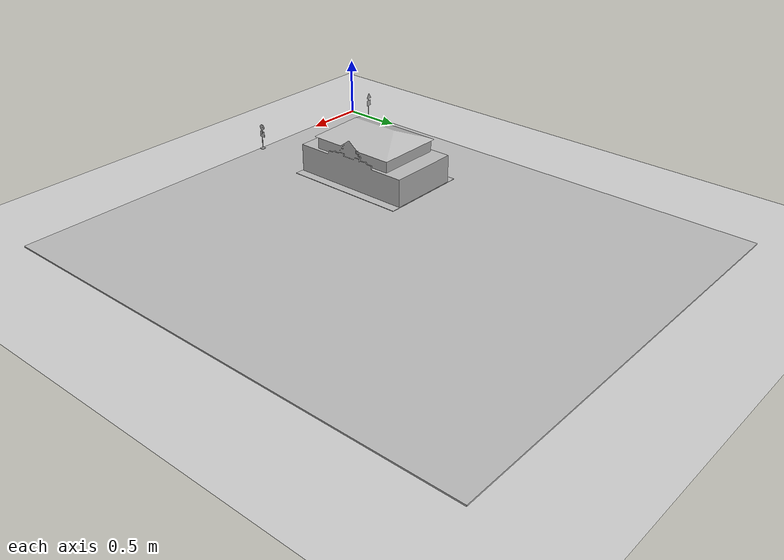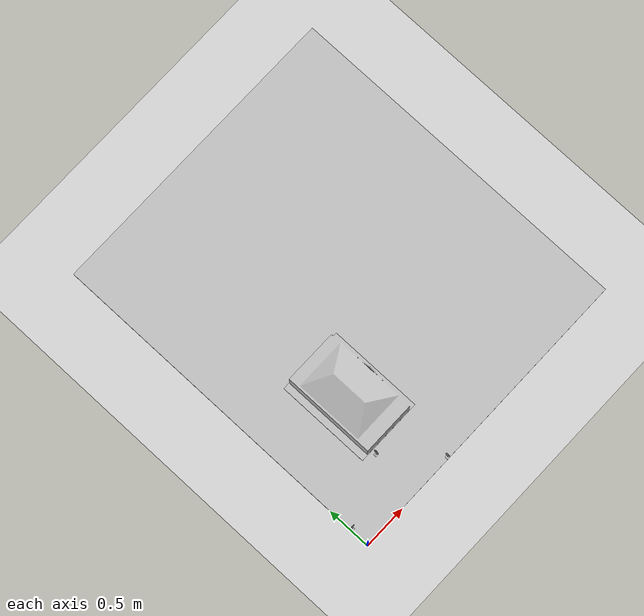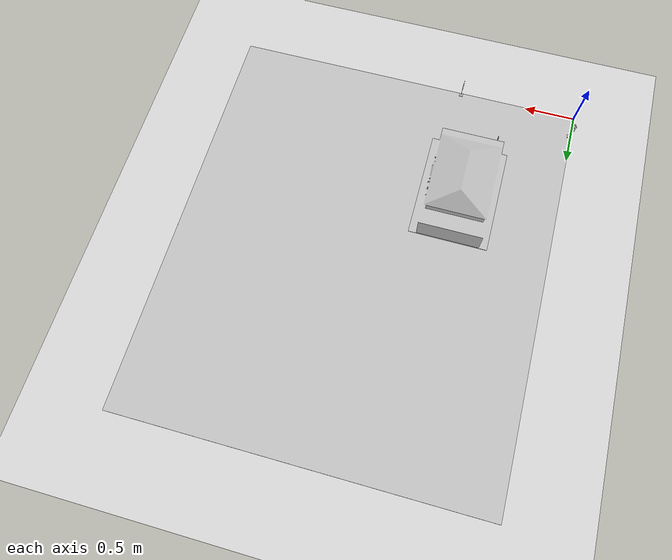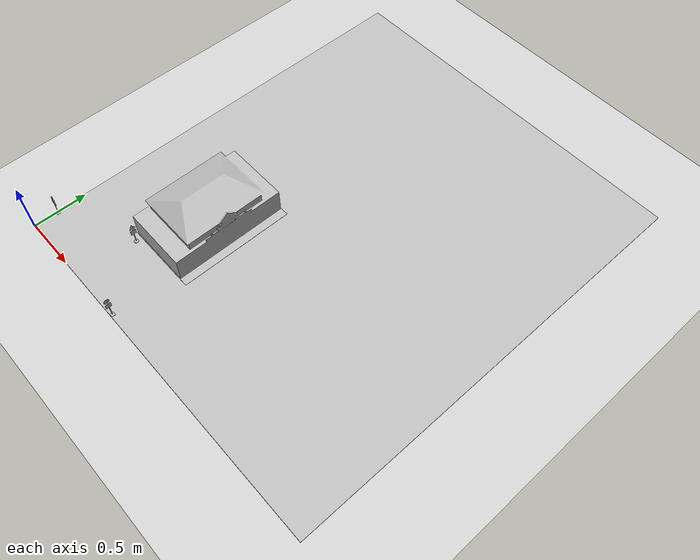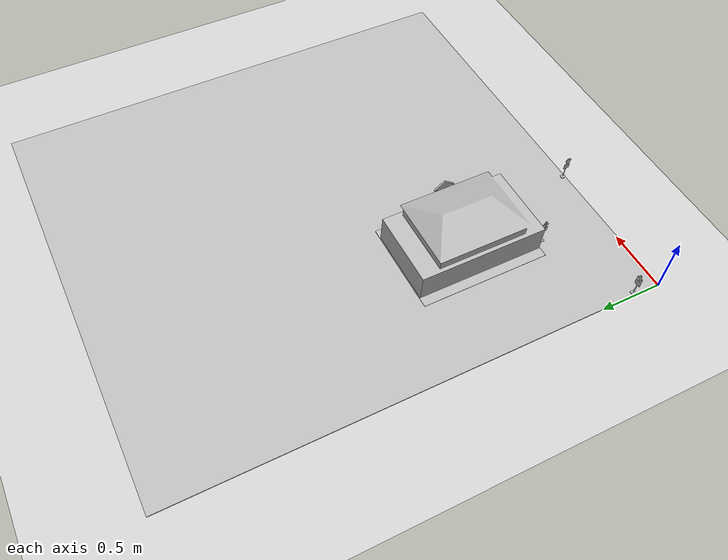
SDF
<sdf version="1.6">
 <world name="default">
  <model name="ground_plane">
   <static>1</static>
   <link name="link">
    <collision name="collision">
     <geometry><plane><normal>0 0 1</normal><size>100 100</size></plane></geometry>
     <surface><friction><ode><mu>100</mu><mu2>50</mu2></ode></friction></surface>
    </collision>
    <visual name="visual">
     <cast_shadows>0</cast_shadows>
     <geometry><plane><normal>0 0 1</normal><size>100 100</size></plane></geometry>
     <material>
      <script><uri>file://media/materials/scripts/gazebo.material</uri><name>Gazebo/Grey</name></script>
     </material>
    </visual>
   </link>
  </model>
  <model name="bigcity">
   <pose>0 0 0.002788 0 -0 0</pose>
   <link name="link_0">
    <inertial>
     <mass>1</mass>
     <inertia>
      <ixx>0.166667</ixx>
      <ixy>0</ixy>
      <ixz>0</ixz>
      <iyy>0.166667</iyy>
      <iyz>0</iyz>
      <izz>0.166667</izz>
     </inertia>
    </inertial>
    <visual name="visual">
     <geometry><mesh><uri>file://models/stl/daeBlender/bigcity.dae</uri><scale>1 1 1</scale></mesh></geometry>
     <material><shader type="pixel"><normal_map>__default__</normal_map></shader></material>
    </visual>
    <collision name="collision">
     <pose>1.75 2 -0.03 0 -0 0</pose>
     <geometry><box><size>3.6 4.1 0.08</size></box></geometry>
     <surface>
      <friction>
       <ode><mu>1</mu><mu2>1</mu2><fdir1>0 0 0</fdir1><slip1>0</slip1><slip2>0</slip2></ode>
       <torsional>
        <coefficient>1</coefficient>
        <patch_radius>0</patch_radius>
        <surface_radius>0</surface_radius>
        <use_patch_radius>1</use_patch_radius>
        <ode><slip>0</slip></ode>
       </torsional>
      </friction>
      <bounce><restitution_coefficient>0</restitution_coefficient><threshold>1e+06</threshold></bounce>
      <contact>
       <collide_without_contact>0</collide_without_contact>
       <collide_without_contact_bitmask>1</collide_without_contact_bitmask>
       <collide_bitmask>1</collide_bitmask>
       <ode>
        <soft_cfm>0</soft_cfm>
        <soft_erp>0.2</soft_erp>
        <kp>1e+13</kp>
        <kd>1</kd>
        <max_vel>0.01</max_vel>
        <min_depth>0</min_depth>
       </ode>
       <bullet>
        <split_impulse>1</split_impulse>
        <split_impulse_penetration_threshold>-0.01</split_impulse_penetration_threshold>
        <soft_cfm>0</soft_cfm>
        <soft_erp>0.2</soft_erp>
        <kp>1e+13</kp>
        <kd>1</kd>
       </bullet>
      </contact>
     </surface>
    </collision>
   </link>
   <static>1</static>
  </model>
  <model name="peligro_drcha_qr_0">
   <link name="link_7">
    <inertial>
     <mass>0.02</mass>
     <inertia>
      <ixx>0.166667</ixx>
      <ixy>0</ixy>
      <ixz>0</ixz>
      <iyy>0.166667</iyy>
      <iyz>0</iyz>
      <izz>0.166667</izz>
     </inertia>
    </inertial>
    <visual name="visual">
     <geometry>
      <mesh><uri>file://models/stl/SENALES_QR/PELIGRO DERECHA/pelgr_dcha_qr.dae</uri><scale>1 1 1</scale></mesh>
     </geometry>
    </visual>
    <collision name="collision">
     <geometry>
      <mesh><uri>file://models/stl/SENALES_QR/PELIGRO DERECHA/pelgr_dcha_qr.dae</uri><scale>1 1 1</scale></mesh>
     </geometry>
     <surface>
      <friction>
       <ode><mu>1</mu><mu2>1</mu2><fdir1>0 0 0</fdir1><slip1>0</slip1><slip2>0</slip2></ode>
       <torsional>
        <coefficient>1</coefficient>
        <patch_radius>0</patch_radius>
        <surface_radius>0</surface_radius>
        <use_patch_radius>1</use_patch_radius>
        <ode><slip>0</slip></ode>
       </torsional>
      </friction>
      <bounce><restitution_coefficient>0</restitution_coefficient><threshold>1e+06</threshold></bounce>
      <contact>
       <collide_without_contact>0</collide_without_contact>
       <collide_without_contact_bitmask>1</collide_without_contact_bitmask>
       <collide_bitmask>1</collide_bitmask>
       <ode>
        <soft_cfm>0</soft_cfm>
        <soft_erp>0.2</soft_erp>
        <kp>1e+13</kp>
        <kd>1</kd>
        <max_vel>0.01</max_vel>
        <min_depth>0</min_depth>
       </ode>
       <bullet>
        <split_impulse>1</split_impulse>
        <split_impulse_penetration_threshold>-0.01</split_impulse_penetration_threshold>
        <soft_cfm>0</soft_cfm>
        <soft_erp>0.2</soft_erp>
        <kp>1e+13</kp>
        <kd>1</kd>
       </bullet>
      </contact>
     </surface>
    </collision>
   </link>
   <static>0</static>
   <pose>0.020053 0.222677 0.012778 -2e-06 -2e-06 -3.12939</pose>
  </model>
  <model name="velocidad40_qr_0">
   <link name="link_13">
    <inertial>
     <mass>0.02</mass>
     <inertia>
      <ixx>0.166667</ixx>
      <ixy>0</ixy>
      <ixz>0</ixz>
      <iyy>0.166667</iyy>
      <iyz>0</iyz>
      <izz>0.166667</izz>
     </inertia>
    </inertial>
    <visual name="visual">
     <geometry>
      <mesh><uri>file://models/stl/SENALES_QR/VELOCIDAD40/velo40_qr.dae</uri><scale>1 1 1</scale></mesh>
     </geometry>
    </visual>
    <collision name="collision">
     <geometry>
      <mesh><uri>file://models/stl/SENALES_QR/VELOCIDAD40/velo40_qr.dae</uri><scale>1 1 1</scale></mesh>
     </geometry>
     <surface>
      <friction>
       <ode><mu>1</mu><mu2>1</mu2><fdir1>0 0 0</fdir1><slip1>0</slip1><slip2>0</slip2></ode>
       <torsional>
        <coefficient>1</coefficient>
        <patch_radius>0</patch_radius>
        <surface_radius>0</surface_radius>
        <use_patch_radius>1</use_patch_radius>
        <ode><slip>0</slip></ode>
       </torsional>
      </friction>
      <bounce><restitution_coefficient>0</restitution_coefficient><threshold>1e+06</threshold></bounce>
      <contact>
       <collide_without_contact>0</collide_without_contact>
       <collide_without_contact_bitmask>1</collide_without_contact_bitmask>
       <collide_bitmask>1</collide_bitmask>
       <ode>
        <soft_cfm>0</soft_cfm>
        <soft_erp>0.2</soft_erp>
        <kp>1e+13</kp>
        <kd>1</kd>
        <max_vel>0.01</max_vel>
        <min_depth>0</min_depth>
       </ode>
       <bullet>
        <split_impulse>1</split_impulse>
        <split_impulse_penetration_threshold>-0.01</split_impulse_penetration_threshold>
        <soft_cfm>0</soft_cfm>
        <soft_erp>0.2</soft_erp>
        <kp>1e+13</kp>
        <kd>1</kd>
       </bullet>
      </contact>
     </surface>
    </collision>
   </link>
   <static>0</static>
   <pose>1.17735 0.019072 0.012811 0.002063 -3e-06 -1.5669</pose>
  </model>
  <model name="peligro_izqu_qr_2">
   <link name="link_8">
    <inertial>
     <mass>0.02</mass>
     <inertia>
      <ixx>0.166667</ixx>
      <ixy>0</ixy>
      <ixz>0</ixz>
      <iyy>0.166667</iyy>
      <iyz>0</iyz>
      <izz>0.166667</izz>
     </inertia>
    </inertial>
    <visual name="visual">
     <geometry>
      <mesh><uri>file://models/stl/SENALES_QR/PELIGRO IZQUIERDA/peligr_izq_qr.dae</uri><scale>1 1 1</scale></mesh>
     </geometry>
    </visual>
    <collision name="collision">
     <geometry>
      <mesh><uri>file://models/stl/SENALES_QR/PELIGRO IZQUIERDA/peligr_izq_qr.dae</uri><scale>1 1 1</scale></mesh>
     </geometry>
     <surface>
      <friction>
       <ode><mu>1</mu><mu2>1</mu2><fdir1>0 0 0</fdir1><slip1>0</slip1><slip2>0</slip2></ode>
       <torsional>
        <coefficient>1</coefficient>
        <patch_radius>0</patch_radius>
        <surface_radius>0</surface_radius>
        <use_patch_radius>1</use_patch_radius>
        <ode><slip>0</slip></ode>
       </torsional>
      </friction>
      <bounce><restitution_coefficient>0</restitution_coefficient><threshold>1e+06</threshold></bounce>
      <contact>
       <collide_without_contact>0</collide_without_contact>
       <collide_without_contact_bitmask>1</collide_without_contact_bitmask>
       <collide_bitmask>1</collide_bitmask>
       <ode>
        <soft_cfm>0</soft_cfm>
        <soft_erp>0.2</soft_erp>
        <kp>1e+13</kp>
        <kd>1</kd>
        <max_vel>0.01</max_vel>
        <min_depth>0</min_depth>
       </ode>
       <bullet>
        <split_impulse>1</split_impulse>
        <split_impulse_penetration_threshold>-0.01</split_impulse_penetration_threshold>
        <soft_cfm>0</soft_cfm>
        <soft_erp>0.2</soft_erp>
        <kp>1e+13</kp>
        <kd>1</kd>
       </bullet>
      </contact>
     </surface>
    </collision>
   </link>
   <static>0</static>
   <pose>0.719286 0.55274 0.012779 -1e-06 -9e-06 1.56316</pose>
  </model>
  <model name="university">
   <link name="link_0">
    <inertial>
     <mass>50000</mass>
     <inertia>
      <ixx>0.166667</ixx>
      <ixy>0</ixy>
      <ixz>0</ixz>
      <iyy>0.166667</iyy>
      <iyz>0</iyz>
      <izz>0.166667</izz>
     </inertia>
    </inertial>
    <visual name="visual">
     <geometry><mesh><uri>file://models/stl/udc_gaz/udc_gaz.dae</uri><scale>1 1 1</scale></mesh></geometry>
     <material><shader type="pixel"><normal_map>__default__</normal_map></shader></material>
    </visual>
    <collision name="collision">
     <pose>0.53 0.396 0 0 -0 0</pose>
     <geometry><box><size>1.053 0.8 0.92</size></box></geometry>
     <surface>
      <friction>
       <ode><mu>1</mu><mu2>1</mu2><fdir1>0 0 0</fdir1><slip1>0</slip1><slip2>0</slip2></ode>
       <torsional>
        <coefficient>1</coefficient>
        <patch_radius>0</patch_radius>
        <surface_radius>0</surface_radius>
        <use_patch_radius>1</use_patch_radius>
        <ode><slip>0</slip></ode>
       </torsional>
      </friction>
      <bounce><restitution_coefficient>0</restitution_coefficient><threshold>1e+06</threshold></bounce>
      <contact>
       <collide_without_contact>0</collide_without_contact>
       <collide_without_contact_bitmask>1</collide_without_contact_bitmask>
       <collide_bitmask>1</collide_bitmask>
       <ode>
        <soft_cfm>0</soft_cfm>
        <soft_erp>0.2</soft_erp>
        <kp>1e+13</kp>
        <kd>1</kd>
        <max_vel>0.01</max_vel>
        <min_depth>0</min_depth>
       </ode>
       <bullet>
        <split_impulse>1</split_impulse>
        <split_impulse_penetration_threshold>-0.01</split_impulse_penetration_threshold>
        <soft_cfm>0</soft_cfm>
        <soft_erp>0.2</soft_erp>
        <kp>1e+13</kp>
        <kd>1</kd>
       </bullet>
      </contact>
     </surface>
    </collision>
   </link>
   <static>1</static>
   <pose>1.37718 0.606206 0.01174 0 -0 1.5708</pose>
  </model>
 </world>
</sdf>
